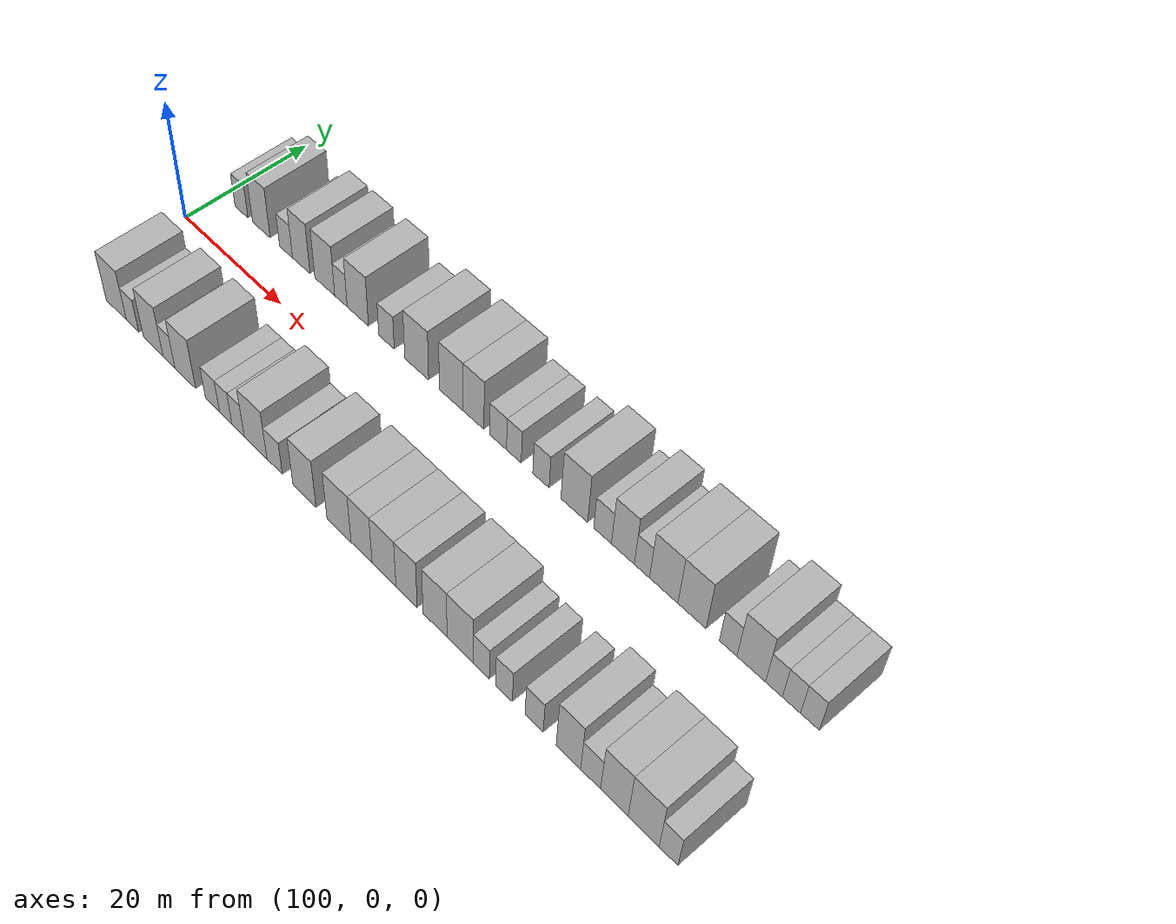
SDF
<sdf version="1.6">
 <world name="default">
  <model name="building_26">
   <static>1</static>
   <pose>104.0441 11.0000 0 0.000000 0.000000 1.570796</pose>
   <link name="link">
    <pose>0 0 3.00 0 0 0</pose>
    <collision name="collision"><geometry><box><size>10.0000 2.7664 6.0000</size></box></geometry></collision>
    <visual name="visual">
     <cast_shadows>0</cast_shadows>
     <geometry><box><size>10.0000 2.7664 6.0000</size></box></geometry>
     <material>
      <script>
       <uri>model://HANNAS_wall/materials/scripts</uri>
       <uri>model://HANNAS_wall/materials/textures</uri>
       <name>vrc/HANNAS_wall</name>
      </script>
     </material>
    </visual>
   </link>
  </model>
  <model name="building_27">
   <static>1</static>
   <pose>108.2860 11.0000 0 0.000000 0.000000 1.570796</pose>
   <link name="link">
    <pose>0 0 4.50 0 0 0</pose>
    <collision name="collision"><geometry><box><size>10.0000 3.7175 9.0000</size></box></geometry></collision>
    <visual name="visual">
     <cast_shadows>0</cast_shadows>
     <geometry><box><size>10.0000 3.7175 9.0000</size></box></geometry>
     <material>
      <script>
       <uri>model://HANNAS_wall/materials/scripts</uri>
       <uri>model://HANNAS_wall/materials/textures</uri>
       <name>vrc/HANNAS_wall</name>
      </script>
     </material>
    </visual>
   </link>
  </model>
  <model name="building_28">
   <static>1</static>
   <pose>113.4828 11.0000 0 0.000000 0.000000 1.570796</pose>
   <link name="link">
    <pose>0 0 3.00 0 0 0</pose>
    <collision name="collision"><geometry><box><size>10.0000 2.6761 6.0000</size></box></geometry></collision>
    <visual name="visual">
     <cast_shadows>0</cast_shadows>
     <geometry><box><size>10.0000 2.6761 6.0000</size></box></geometry>
     <material>
      <script>
       <uri>model://HANNAS_wall/materials/scripts</uri>
       <uri>model://HANNAS_wall/materials/textures</uri>
       <name>vrc/HANNAS_wall</name>
      </script>
     </material>
    </visual>
   </link>
  </model>
  <model name="building_29">
   <static>1</static>
   <pose>116.6218 11.0000 0 0.000000 0.000000 1.570796</pose>
   <link name="link">
    <pose>0 0 4.50 0 0 0</pose>
    <collision name="collision"><geometry><box><size>10.0000 3.6017 9.0000</size></box></geometry></collision>
    <visual name="visual">
     <cast_shadows>0</cast_shadows>
     <geometry><box><size>10.0000 3.6017 9.0000</size></box></geometry>
     <material>
      <script>
       <uri>model://HANNAS_wall/materials/scripts</uri>
       <uri>model://HANNAS_wall/materials/textures</uri>
       <name>vrc/HANNAS_wall</name>
      </script>
     </material>
    </visual>
   </link>
  </model>
  <model name="building_30">
   <static>1</static>
   <pose>121.4236 11.0000 0 0.000000 0.000000 1.570796</pose>
   <link name="link">
    <pose>0 0 4.50 0 0 0</pose>
    <collision name="collision"><geometry><box><size>10.0000 4.0019 9.0000</size></box></geometry></collision>
    <visual name="visual">
     <cast_shadows>0</cast_shadows>
     <geometry><box><size>10.0000 4.0019 9.0000</size></box></geometry>
     <material>
      <script>
       <uri>model://HANNAS_wall/materials/scripts</uri>
       <uri>model://HANNAS_wall/materials/textures</uri>
       <name>vrc/HANNAS_wall</name>
      </script>
     </material>
    </visual>
   </link>
  </model>
  <model name="building_31">
   <static>1</static>
   <pose>124.6648 11.0000 0 0.000000 0.000000 1.570796</pose>
   <link name="link">
    <pose>0 0 3.00 0 0 0</pose>
    <collision name="collision"><geometry><box><size>10.0000 2.4805 6.0000</size></box></geometry></collision>
    <visual name="visual">
     <cast_shadows>0</cast_shadows>
     <geometry><box><size>10.0000 2.4805 6.0000</size></box></geometry>
     <material>
      <script>
       <uri>model://HANNAS_wall/materials/scripts</uri>
       <uri>model://HANNAS_wall/materials/textures</uri>
       <name>vrc/HANNAS_wall</name>
      </script>
     </material>
    </visual>
   </link>
  </model>
  <model name="building_32">
   <static>1</static>
   <pose>127.9962 11.0000 0 0.000000 0.000000 1.570796</pose>
   <link name="link">
    <pose>0 0 4.50 0 0 0</pose>
    <collision name="collision"><geometry><box><size>10.0000 4.1823 9.0000</size></box></geometry></collision>
    <visual name="visual">
     <cast_shadows>0</cast_shadows>
     <geometry><box><size>10.0000 4.1823 9.0000</size></box></geometry>
     <material>
      <script>
       <uri>model://HANNAS_wall/materials/scripts</uri>
       <uri>model://HANNAS_wall/materials/textures</uri>
       <name>vrc/HANNAS_wall</name>
      </script>
     </material>
    </visual>
   </link>
  </model>
  <model name="building_33">
   <static>1</static>
   <pose>133.5678 11.0000 0 0.000000 0.000000 1.570796</pose>
   <link name="link">
    <pose>0 0 3.00 0 0 0</pose>
    <collision name="collision"><geometry><box><size>10.0000 2.9610 6.0000</size></box></geometry></collision>
    <visual name="visual">
     <cast_shadows>0</cast_shadows>
     <geometry><box><size>10.0000 2.9610 6.0000</size></box></geometry>
     <material>
      <script>
       <uri>model://HANNAS_wall/materials/scripts</uri>
       <uri>model://HANNAS_wall/materials/textures</uri>
       <name>vrc/HANNAS_wall</name>
      </script>
     </material>
    </visual>
   </link>
  </model>
  <model name="building_34">
   <static>1</static>
   <pose>139.2877 11.0000 0 0.000000 0.000000 1.570796</pose>
   <link name="link">
    <pose>0 0 4.50 0 0 0</pose>
    <collision name="collision"><geometry><box><size>10.0000 4.4787 9.0000</size></box></geometry></collision>
    <visual name="visual">
     <cast_shadows>0</cast_shadows>
     <geometry><box><size>10.0000 4.4787 9.0000</size></box></geometry>
     <material>
      <script>
       <uri>model://HANNAS_wall/materials/scripts</uri>
       <uri>model://HANNAS_wall/materials/textures</uri>
       <name>vrc/HANNAS_wall</name>
      </script>
     </material>
    </visual>
   </link>
  </model>
  <model name="building_35">
   <static>1</static>
   <pose>145.7002 11.0000 0 0.000000 0.000000 1.570796</pose>
   <link name="link">
    <pose>0 0 4.50 0 0 0</pose>
    <collision name="collision"><geometry><box><size>10.0000 4.3463 9.0000</size></box></geometry></collision>
    <visual name="visual">
     <cast_shadows>0</cast_shadows>
     <geometry><box><size>10.0000 4.3463 9.0000</size></box></geometry>
     <material>
      <script>
       <uri>model://HANNAS_wall/materials/scripts</uri>
       <uri>model://HANNAS_wall/materials/textures</uri>
       <name>vrc/HANNAS_wall</name>
      </script>
     </material>
    </visual>
   </link>
  </model>
  <model name="building_36">
   <static>1</static>
   <pose>149.7222 11.0000 0 0.000000 0.000000 1.570796</pose>
   <link name="link">
    <pose>0 0 4.50 0 0 0</pose>
    <collision name="collision"><geometry><box><size>10.0000 3.6979 9.0000</size></box></geometry></collision>
    <visual name="visual">
     <cast_shadows>0</cast_shadows>
     <geometry><box><size>10.0000 3.6979 9.0000</size></box></geometry>
     <material>
      <script>
       <uri>model://HANNAS_wall/materials/scripts</uri>
       <uri>model://HANNAS_wall/materials/textures</uri>
       <name>vrc/HANNAS_wall</name>
      </script>
     </material>
    </visual>
   </link>
  </model>
  <model name="building_37">
   <static>1</static>
   <pose>154.0695 11.0000 0 0.000000 0.000000 1.570796</pose>
   <link name="link">
    <pose>0 0 3.00 0 0 0</pose>
    <collision name="collision"><geometry><box><size>10.0000 2.9967 6.0000</size></box></geometry></collision>
    <visual name="visual">
     <cast_shadows>0</cast_shadows>
     <geometry><box><size>10.0000 2.9967 6.0000</size></box></geometry>
     <material>
      <script>
       <uri>model://HANNAS_wall/materials/scripts</uri>
       <uri>model://HANNAS_wall/materials/textures</uri>
       <name>vrc/HANNAS_wall</name>
      </script>
     </material>
    </visual>
   </link>
  </model>
  <model name="building_38">
   <static>1</static>
   <pose>156.8507 11.0000 0 0.000000 0.000000 1.570796</pose>
   <link name="link">
    <pose>0 0 3.00 0 0 0</pose>
    <collision name="collision"><geometry><box><size>10.0000 2.5656 6.0000</size></box></geometry></collision>
    <visual name="visual">
     <cast_shadows>0</cast_shadows>
     <geometry><box><size>10.0000 2.5656 6.0000</size></box></geometry>
     <material>
      <script>
       <uri>model://HANNAS_wall/materials/scripts</uri>
       <uri>model://HANNAS_wall/materials/textures</uri>
       <name>vrc/HANNAS_wall</name>
      </script>
     </material>
    </visual>
   </link>
  </model>
  <model name="building_39">
   <static>1</static>
   <pose>161.5285 11.0000 0 0.000000 0.000000 1.570796</pose>
   <link name="link">
    <pose>0 0 3.00 0 0 0</pose>
    <collision name="collision"><geometry><box><size>10.0000 2.7900 6.0000</size></box></geometry></collision>
    <visual name="visual">
     <cast_shadows>0</cast_shadows>
     <geometry><box><size>10.0000 2.7900 6.0000</size></box></geometry>
     <material>
      <script>
       <uri>model://HANNAS_wall/materials/scripts</uri>
       <uri>model://HANNAS_wall/materials/textures</uri>
       <name>vrc/HANNAS_wall</name>
      </script>
     </material>
    </visual>
   </link>
  </model>
  <model name="building_40">
   <static>1</static>
   <pose>167.1482 11.0000 0 0.000000 0.000000 1.570796</pose>
   <link name="link">
    <pose>0 0 4.50 0 0 0</pose>
    <collision name="collision"><geometry><box><size>10.0000 4.4494 9.0000</size></box></geometry></collision>
    <visual name="visual">
     <cast_shadows>0</cast_shadows>
     <geometry><box><size>10.0000 4.4494 9.0000</size></box></geometry>
     <material>
      <script>
       <uri>model://HANNAS_wall/materials/scripts</uri>
       <uri>model://HANNAS_wall/materials/textures</uri>
       <name>vrc/HANNAS_wall</name>
      </script>
     </material>
    </visual>
   </link>
  </model>
  <model name="building_41">
   <static>1</static>
   <pose>171.8183 11.0000 0 0.000000 0.000000 1.570796</pose>
   <link name="link">
    <pose>0 0 3.00 0 0 0</pose>
    <collision name="collision"><geometry><box><size>10.0000 2.8908 6.0000</size></box></geometry></collision>
    <visual name="visual">
     <cast_shadows>0</cast_shadows>
     <geometry><box><size>10.0000 2.8908 6.0000</size></box></geometry>
     <material>
      <script>
       <uri>model://HANNAS_wall/materials/scripts</uri>
       <uri>model://HANNAS_wall/materials/textures</uri>
       <name>vrc/HANNAS_wall</name>
      </script>
     </material>
    </visual>
   </link>
  </model>
  <model name="building_42">
   <static>1</static>
   <pose>175.1064 11.0000 0 0.000000 0.000000 1.570796</pose>
   <link name="link">
    <pose>0 0 4.50 0 0 0</pose>
    <collision name="collision"><geometry><box><size>10.0000 3.6856 9.0000</size></box></geometry></collision>
    <visual name="visual">
     <cast_shadows>0</cast_shadows>
     <geometry><box><size>10.0000 3.6856 9.0000</size></box></geometry>
     <material>
      <script>
       <uri>model://HANNAS_wall/materials/scripts</uri>
       <uri>model://HANNAS_wall/materials/textures</uri>
       <name>vrc/HANNAS_wall</name>
      </script>
     </material>
    </visual>
   </link>
  </model>
  <model name="building_43">
   <static>1</static>
   <pose>178.1605 11.0000 0 0.000000 0.000000 1.570796</pose>
   <link name="link">
    <pose>0 0 3.00 0 0 0</pose>
    <collision name="collision"><geometry><box><size>10.0000 2.4226 6.0000</size></box></geometry></collision>
    <visual name="visual">
     <cast_shadows>0</cast_shadows>
     <geometry><box><size>10.0000 2.4226 6.0000</size></box></geometry>
     <material>
      <script>
       <uri>model://HANNAS_wall/materials/scripts</uri>
       <uri>model://HANNAS_wall/materials/textures</uri>
       <name>vrc/HANNAS_wall</name>
      </script>
     </material>
    </visual>
   </link>
  </model>
  <model name="building_44">
   <static>1</static>
   <pose>181.5900 11.0000 0 0.000000 0.000000 1.570796</pose>
   <link name="link">
    <pose>0 0 4.50 0 0 0</pose>
    <collision name="collision"><geometry><box><size>10.0000 4.4364 9.0000</size></box></geometry></collision>
    <visual name="visual">
     <cast_shadows>0</cast_shadows>
     <geometry><box><size>10.0000 4.4364 9.0000</size></box></geometry>
     <material>
      <script>
       <uri>model://HANNAS_wall/materials/scripts</uri>
       <uri>model://HANNAS_wall/materials/textures</uri>
       <name>vrc/HANNAS_wall</name>
      </script>
     </material>
    </visual>
   </link>
  </model>
  <model name="building_45">
   <static>1</static>
   <pose>185.9693 11.0000 0 0.000000 0.000000 1.570796</pose>
   <link name="link">
    <pose>0 0 4.50 0 0 0</pose>
    <collision name="collision"><geometry><box><size>10.0000 4.3222 9.0000</size></box></geometry></collision>
    <visual name="visual">
     <cast_shadows>0</cast_shadows>
     <geometry><box><size>10.0000 4.3222 9.0000</size></box></geometry>
     <material>
      <script>
       <uri>model://HANNAS_wall/materials/scripts</uri>
       <uri>model://HANNAS_wall/materials/textures</uri>
       <name>vrc/HANNAS_wall</name>
      </script>
     </material>
    </visual>
   </link>
  </model>
  <model name="building_46">
   <static>1</static>
   <pose>191.4450 11.0000 0 0.000000 0.000000 1.570796</pose>
   <link name="link">
    <pose>0 0 3.00 0 0 0</pose>
    <collision name="collision"><geometry><box><size>10.0000 2.6292 6.0000</size></box></geometry></collision>
    <visual name="visual">
     <cast_shadows>0</cast_shadows>
     <geometry><box><size>10.0000 2.6292 6.0000</size></box></geometry>
     <material>
      <script>
       <uri>model://HANNAS_wall/materials/scripts</uri>
       <uri>model://HANNAS_wall/materials/textures</uri>
       <name>vrc/HANNAS_wall</name>
      </script>
     </material>
    </visual>
   </link>
  </model>
  <model name="building_47">
   <static>1</static>
   <pose>194.8585 11.0000 0 0.000000 0.000000 1.570796</pose>
   <link name="link">
    <pose>0 0 4.50 0 0 0</pose>
    <collision name="collision"><geometry><box><size>10.0000 4.1977 9.0000</size></box></geometry></collision>
    <visual name="visual">
     <cast_shadows>0</cast_shadows>
     <geometry><box><size>10.0000 4.1977 9.0000</size></box></geometry>
     <material>
      <script>
       <uri>model://HANNAS_wall/materials/scripts</uri>
       <uri>model://HANNAS_wall/materials/textures</uri>
       <name>vrc/HANNAS_wall</name>
      </script>
     </material>
    </visual>
   </link>
  </model>
  <model name="building_48">
   <static>1</static>
   <pose>198.1755 11.0000 0 0.000000 0.000000 1.570796</pose>
   <link name="link">
    <pose>0 0 3.00 0 0 0</pose>
    <collision name="collision"><geometry><box><size>10.0000 2.4363 6.0000</size></box></geometry></collision>
    <visual name="visual">
     <cast_shadows>0</cast_shadows>
     <geometry><box><size>10.0000 2.4363 6.0000</size></box></geometry>
     <material>
      <script>
       <uri>model://HANNAS_wall/materials/scripts</uri>
       <uri>model://HANNAS_wall/materials/textures</uri>
       <name>vrc/HANNAS_wall</name>
      </script>
     </material>
    </visual>
   </link>
  </model>
  <model name="building_49">
   <static>1</static>
   <pose>200.6942 11.0000 0 0.000000 0.000000 1.570796</pose>
   <link name="link">
    <pose>0 0 3.00 0 0 0</pose>
    <collision name="collision"><geometry><box><size>10.0000 2.6012 6.0000</size></box></geometry></collision>
    <visual name="visual">
     <cast_shadows>0</cast_shadows>
     <geometry><box><size>10.0000 2.6012 6.0000</size></box></geometry>
     <material>
      <script>
       <uri>model://HANNAS_wall/materials/scripts</uri>
       <uri>model://HANNAS_wall/materials/textures</uri>
       <name>vrc/HANNAS_wall</name>
      </script>
     </material>
    </visual>
   </link>
  </model>
  <model name="building_50">
   <static>1</static>
   <pose>203.3275 11.0000 0 0.000000 0.000000 1.570796</pose>
   <link name="link">
    <pose>0 0 3.00 0 0 0</pose>
    <collision name="collision"><geometry><box><size>10.0000 2.6655 6.0000</size></box></geometry></collision>
    <visual name="visual">
     <cast_shadows>0</cast_shadows>
     <geometry><box><size>10.0000 2.6655 6.0000</size></box></geometry>
     <material>
      <script>
       <uri>model://HANNAS_wall/materials/scripts</uri>
       <uri>model://HANNAS_wall/materials/textures</uri>
       <name>vrc/HANNAS_wall</name>
      </script>
     </material>
    </visual>
   </link>
  </model>
  <model name="building_76">
   <static>1</static>
   <pose>107.1784 -11.0000 0 0.000000 0.000000 1.570796</pose>
   <link name="link">
    <pose>0 0 4.50 0 0 0</pose>
    <collision name="collision"><geometry><box><size>10.0000 4.3725 9.0000</size></box></geometry></collision>
    <visual name="visual">
     <cast_shadows>0</cast_shadows>
     <geometry><box><size>10.0000 4.3725 9.0000</size></box></geometry>
     <material>
      <script>
       <uri>model://HANNAS_wall/materials/scripts</uri>
       <uri>model://HANNAS_wall/materials/textures</uri>
       <name>vrc/HANNAS_wall</name>
      </script>
     </material>
    </visual>
   </link>
  </model>
  <model name="building_77">
   <static>1</static>
   <pose>110.6973 -11.0000 0 0.000000 0.000000 1.570796</pose>
   <link name="link">
    <pose>0 0 3.00 0 0 0</pose>
    <collision name="collision"><geometry><box><size>10.0000 2.6654 6.0000</size></box></geometry></collision>
    <visual name="visual">
     <cast_shadows>0</cast_shadows>
     <geometry><box><size>10.0000 2.6654 6.0000</size></box></geometry>
     <material>
      <script>
       <uri>model://HANNAS_wall/materials/scripts</uri>
       <uri>model://HANNAS_wall/materials/textures</uri>
       <name>vrc/HANNAS_wall</name>
      </script>
     </material>
    </visual>
   </link>
  </model>
  <model name="building_78">
   <static>1</static>
   <pose>115.0964 -11.0000 0 0.000000 0.000000 1.570796</pose>
   <link name="link">
    <pose>0 0 4.50 0 0 0</pose>
    <collision name="collision"><geometry><box><size>10.0000 4.1327 9.0000</size></box></geometry></collision>
    <visual name="visual">
     <cast_shadows>0</cast_shadows>
     <geometry><box><size>10.0000 4.1327 9.0000</size></box></geometry>
     <material>
      <script>
       <uri>model://HANNAS_wall/materials/scripts</uri>
       <uri>model://HANNAS_wall/materials/textures</uri>
       <name>vrc/HANNAS_wall</name>
      </script>
     </material>
    </visual>
   </link>
  </model>
  <model name="building_79">
   <static>1</static>
   <pose>118.3958 -11.0000 0 0.000000 0.000000 1.570796</pose>
   <link name="link">
    <pose>0 0 3.00 0 0 0</pose>
    <collision name="collision"><geometry><box><size>10.0000 2.4661 6.0000</size></box></geometry></collision>
    <visual name="visual">
     <cast_shadows>0</cast_shadows>
     <geometry><box><size>10.0000 2.4661 6.0000</size></box></geometry>
     <material>
      <script>
       <uri>model://HANNAS_wall/materials/scripts</uri>
       <uri>model://HANNAS_wall/materials/textures</uri>
       <name>vrc/HANNAS_wall</name>
      </script>
     </material>
    </visual>
   </link>
  </model>
  <model name="building_80">
   <static>1</static>
   <pose>121.7547 -11.0000 0 0.000000 0.000000 1.570796</pose>
   <link name="link">
    <pose>0 0 4.50 0 0 0</pose>
    <collision name="collision"><geometry><box><size>10.0000 4.2517 9.0000</size></box></geometry></collision>
    <visual name="visual">
     <cast_shadows>0</cast_shadows>
     <geometry><box><size>10.0000 4.2517 9.0000</size></box></geometry>
     <material>
      <script>
       <uri>model://HANNAS_wall/materials/scripts</uri>
       <uri>model://HANNAS_wall/materials/textures</uri>
       <name>vrc/HANNAS_wall</name>
      </script>
     </material>
    </visual>
   </link>
  </model>
  <model name="building_81">
   <static>1</static>
   <pose>127.2900 -11.0000 0 0.000000 0.000000 1.570796</pose>
   <link name="link">
    <pose>0 0 3.00 0 0 0</pose>
    <collision name="collision"><geometry><box><size>10.0000 2.8190 6.0000</size></box></geometry></collision>
    <visual name="visual">
     <cast_shadows>0</cast_shadows>
     <geometry><box><size>10.0000 2.8190 6.0000</size></box></geometry>
     <material>
      <script>
       <uri>model://HANNAS_wall/materials/scripts</uri>
       <uri>model://HANNAS_wall/materials/textures</uri>
       <name>vrc/HANNAS_wall</name>
      </script>
     </material>
    </visual>
   </link>
  </model>
  <model name="building_82">
   <static>1</static>
   <pose>129.9274 -11.0000 0 0.000000 0.000000 1.570796</pose>
   <link name="link">
    <pose>0 0 3.00 0 0 0</pose>
    <collision name="collision"><geometry><box><size>10.0000 2.4559 6.0000</size></box></geometry></collision>
    <visual name="visual">
     <cast_shadows>0</cast_shadows>
     <geometry><box><size>10.0000 2.4559 6.0000</size></box></geometry>
     <material>
      <script>
       <uri>model://HANNAS_wall/materials/scripts</uri>
       <uri>model://HANNAS_wall/materials/textures</uri>
       <name>vrc/HANNAS_wall</name>
      </script>
     </material>
    </visual>
   </link>
  </model>
  <model name="building_83">
   <static>1</static>
   <pose>132.3663 -11.0000 0 0.000000 0.000000 1.570796</pose>
   <link name="link">
    <pose>0 0 3.00 0 0 0</pose>
    <collision name="collision"><geometry><box><size>10.0000 2.4218 6.0000</size></box></geometry></collision>
    <visual name="visual">
     <cast_shadows>0</cast_shadows>
     <geometry><box><size>10.0000 2.4218 6.0000</size></box></geometry>
     <material>
      <script>
       <uri>model://HANNAS_wall/materials/scripts</uri>
       <uri>model://HANNAS_wall/materials/textures</uri>
       <name>vrc/HANNAS_wall</name>
      </script>
     </material>
    </visual>
   </link>
  </model>
  <model name="building_84">
   <static>1</static>
   <pose>135.7771 -11.0000 0 0.000000 0.000000 1.570796</pose>
   <link name="link">
    <pose>0 0 4.50 0 0 0</pose>
    <collision name="collision"><geometry><box><size>10.0000 4.3999 9.0000</size></box></geometry></collision>
    <visual name="visual">
     <cast_shadows>0</cast_shadows>
     <geometry><box><size>10.0000 4.3999 9.0000</size></box></geometry>
     <material>
      <script>
       <uri>model://HANNAS_wall/materials/scripts</uri>
       <uri>model://HANNAS_wall/materials/textures</uri>
       <name>vrc/HANNAS_wall</name>
      </script>
     </material>
    </visual>
   </link>
  </model>
  <model name="building_85">
   <static>1</static>
   <pose>139.4356 -11.0000 0 0.000000 0.000000 1.570796</pose>
   <link name="link">
    <pose>0 0 3.00 0 0 0</pose>
    <collision name="collision"><geometry><box><size>10.0000 2.9171 6.0000</size></box></geometry></collision>
    <visual name="visual">
     <cast_shadows>0</cast_shadows>
     <geometry><box><size>10.0000 2.9171 6.0000</size></box></geometry>
     <material>
      <script>
       <uri>model://HANNAS_wall/materials/scripts</uri>
       <uri>model://HANNAS_wall/materials/textures</uri>
       <name>vrc/HANNAS_wall</name>
      </script>
     </material>
    </visual>
   </link>
  </model>
  <model name="building_86">
   <static>1</static>
   <pose>145.0407 -11.0000 0 0.000000 0.000000 1.570796</pose>
   <link name="link">
    <pose>0 0 4.50 0 0 0</pose>
    <collision name="collision"><geometry><box><size>10.0000 4.2930 9.0000</size></box></geometry></collision>
    <visual name="visual">
     <cast_shadows>0</cast_shadows>
     <geometry><box><size>10.0000 4.2930 9.0000</size></box></geometry>
     <material>
      <script>
       <uri>model://HANNAS_wall/materials/scripts</uri>
       <uri>model://HANNAS_wall/materials/textures</uri>
       <name>vrc/HANNAS_wall</name>
      </script>
     </material>
    </visual>
   </link>
  </model>
  <model name="building_87">
   <static>1</static>
   <pose>151.3651 -11.0000 0 0.000000 0.000000 1.570796</pose>
   <link name="link">
    <pose>0 0 4.50 0 0 0</pose>
    <collision name="collision"><geometry><box><size>10.0000 4.3558 9.0000</size></box></geometry></collision>
    <visual name="visual">
     <cast_shadows>0</cast_shadows>
     <geometry><box><size>10.0000 4.3558 9.0000</size></box></geometry>
     <material>
      <script>
       <uri>model://HANNAS_wall/materials/scripts</uri>
       <uri>model://HANNAS_wall/materials/textures</uri>
       <name>vrc/HANNAS_wall</name>
      </script>
     </material>
    </visual>
   </link>
  </model>
  <model name="building_88">
   <static>1</static>
   <pose>155.4128 -11.0000 0 0.000000 0.000000 1.570796</pose>
   <link name="link">
    <pose>0 0 4.50 0 0 0</pose>
    <collision name="collision"><geometry><box><size>10.0000 3.7395 9.0000</size></box></geometry></collision>
    <visual name="visual">
     <cast_shadows>0</cast_shadows>
     <geometry><box><size>10.0000 3.7395 9.0000</size></box></geometry>
     <material>
      <script>
       <uri>model://HANNAS_wall/materials/scripts</uri>
       <uri>model://HANNAS_wall/materials/textures</uri>
       <name>vrc/HANNAS_wall</name>
      </script>
     </material>
    </visual>
   </link>
  </model>
  <model name="building_89">
   <static>1</static>
   <pose>159.3691 -11.0000 0 0.000000 0.000000 1.570796</pose>
   <link name="link">
    <pose>0 0 4.50 0 0 0</pose>
    <collision name="collision"><geometry><box><size>10.0000 4.1733 9.0000</size></box></geometry></collision>
    <visual name="visual">
     <cast_shadows>0</cast_shadows>
     <geometry><box><size>10.0000 4.1733 9.0000</size></box></geometry>
     <material>
      <script>
       <uri>model://HANNAS_wall/materials/scripts</uri>
       <uri>model://HANNAS_wall/materials/textures</uri>
       <name>vrc/HANNAS_wall</name>
      </script>
     </material>
    </visual>
   </link>
  </model>
  <model name="building_90">
   <static>1</static>
   <pose>163.2693 -11.0000 0 0.000000 0.000000 1.570796</pose>
   <link name="link">
    <pose>0 0 4.50 0 0 0</pose>
    <collision name="collision"><geometry><box><size>10.0000 3.6270 9.0000</size></box></geometry></collision>
    <visual name="visual">
     <cast_shadows>0</cast_shadows>
     <geometry><box><size>10.0000 3.6270 9.0000</size></box></geometry>
     <material>
      <script>
       <uri>model://HANNAS_wall/materials/scripts</uri>
       <uri>model://HANNAS_wall/materials/textures</uri>
       <name>vrc/HANNAS_wall</name>
      </script>
     </material>
    </visual>
   </link>
  </model>
  <model name="building_91">
   <static>1</static>
   <pose>168.0905 -11.0000 0 0.000000 0.000000 1.570796</pose>
   <link name="link">
    <pose>0 0 4.50 0 0 0</pose>
    <collision name="collision"><geometry><box><size>10.0000 4.0156 9.0000</size></box></geometry></collision>
    <visual name="visual">
     <cast_shadows>0</cast_shadows>
     <geometry><box><size>10.0000 4.0156 9.0000</size></box></geometry>
     <material>
      <script>
       <uri>model://HANNAS_wall/materials/scripts</uri>
       <uri>model://HANNAS_wall/materials/textures</uri>
       <name>vrc/HANNAS_wall</name>
      </script>
     </material>
    </visual>
   </link>
  </model>
  <model name="building_92">
   <static>1</static>
   <pose>172.2556 -11.0000 0 0.000000 0.000000 1.570796</pose>
   <link name="link">
    <pose>0 0 4.50 0 0 0</pose>
    <collision name="collision"><geometry><box><size>10.0000 4.3146 9.0000</size></box></geometry></collision>
    <visual name="visual">
     <cast_shadows>0</cast_shadows>
     <geometry><box><size>10.0000 4.3146 9.0000</size></box></geometry>
     <material>
      <script>
       <uri>model://HANNAS_wall/materials/scripts</uri>
       <uri>model://HANNAS_wall/materials/textures</uri>
       <name>vrc/HANNAS_wall</name>
      </script>
     </material>
    </visual>
   </link>
  </model>
  <model name="building_93">
   <static>1</static>
   <pose>175.7111 -11.0000 0 0.000000 0.000000 1.570796</pose>
   <link name="link">
    <pose>0 0 3.00 0 0 0</pose>
    <collision name="collision"><geometry><box><size>10.0000 2.5963 6.0000</size></box></geometry></collision>
    <visual name="visual">
     <cast_shadows>0</cast_shadows>
     <geometry><box><size>10.0000 2.5963 6.0000</size></box></geometry>
     <material>
      <script>
       <uri>model://HANNAS_wall/materials/scripts</uri>
       <uri>model://HANNAS_wall/materials/textures</uri>
       <name>vrc/HANNAS_wall</name>
      </script>
     </material>
    </visual>
   </link>
  </model>
  <model name="building_94">
   <static>1</static>
   <pose>179.3433 -11.0000 0 0.000000 0.000000 1.570796</pose>
   <link name="link">
    <pose>0 0 3.00 0 0 0</pose>
    <collision name="collision"><geometry><box><size>10.0000 2.6681 6.0000</size></box></geometry></collision>
    <visual name="visual">
     <cast_shadows>0</cast_shadows>
     <geometry><box><size>10.0000 2.6681 6.0000</size></box></geometry>
     <material>
      <script>
       <uri>model://HANNAS_wall/materials/scripts</uri>
       <uri>model://HANNAS_wall/materials/textures</uri>
       <name>vrc/HANNAS_wall</name>
      </script>
     </material>
    </visual>
   </link>
  </model>
  <model name="building_95">
   <static>1</static>
   <pose>184.0925 -11.0000 0 0.000000 0.000000 1.570796</pose>
   <link name="link">
    <pose>0 0 3.00 0 0 0</pose>
    <collision name="collision"><geometry><box><size>10.0000 2.8303 6.0000</size></box></geometry></collision>
    <visual name="visual">
     <cast_shadows>0</cast_shadows>
     <geometry><box><size>10.0000 2.8303 6.0000</size></box></geometry>
     <material>
      <script>
       <uri>model://HANNAS_wall/materials/scripts</uri>
       <uri>model://HANNAS_wall/materials/textures</uri>
       <name>vrc/HANNAS_wall</name>
      </script>
     </material>
    </visual>
   </link>
  </model>
  <model name="building_96">
   <static>1</static>
   <pose>189.3586 -11.0000 0 0.000000 0.000000 1.570796</pose>
   <link name="link">
    <pose>0 0 4.50 0 0 0</pose>
    <collision name="collision"><geometry><box><size>10.0000 3.7020 9.0000</size></box></geometry></collision>
    <visual name="visual">
     <cast_shadows>0</cast_shadows>
     <geometry><box><size>10.0000 3.7020 9.0000</size></box></geometry>
     <material>
      <script>
       <uri>model://HANNAS_wall/materials/scripts</uri>
       <uri>model://HANNAS_wall/materials/textures</uri>
       <name>vrc/HANNAS_wall</name>
      </script>
     </material>
    </visual>
   </link>
  </model>
  <model name="building_97">
   <static>1</static>
   <pose>192.7062 -11.0000 0 0.000000 0.000000 1.570796</pose>
   <link name="link">
    <pose>0 0 3.00 0 0 0</pose>
    <collision name="collision"><geometry><box><size>10.0000 2.9934 6.0000</size></box></geometry></collision>
    <visual name="visual">
     <cast_shadows>0</cast_shadows>
     <geometry><box><size>10.0000 2.9934 6.0000</size></box></geometry>
     <material>
      <script>
       <uri>model://HANNAS_wall/materials/scripts</uri>
       <uri>model://HANNAS_wall/materials/textures</uri>
       <name>vrc/HANNAS_wall</name>
      </script>
     </material>
    </visual>
   </link>
  </model>
  <model name="building_98">
   <static>1</static>
   <pose>196.2232 -11.0000 0 0.000000 0.000000 1.570796</pose>
   <link name="link">
    <pose>0 0 4.50 0 0 0</pose>
    <collision name="collision"><geometry><box><size>10.0000 4.0406 9.0000</size></box></geometry></collision>
    <visual name="visual">
     <cast_shadows>0</cast_shadows>
     <geometry><box><size>10.0000 4.0406 9.0000</size></box></geometry>
     <material>
      <script>
       <uri>model://HANNAS_wall/materials/scripts</uri>
       <uri>model://HANNAS_wall/materials/textures</uri>
       <name>vrc/HANNAS_wall</name>
      </script>
     </material>
    </visual>
   </link>
  </model>
  <model name="building_99">
   <static>1</static>
   <pose>200.4679 -11.0000 0 0.000000 0.000000 1.570796</pose>
   <link name="link">
    <pose>0 0 4.50 0 0 0</pose>
    <collision name="collision"><geometry><box><size>10.0000 4.4488 9.0000</size></box></geometry></collision>
    <visual name="visual">
     <cast_shadows>0</cast_shadows>
     <geometry><box><size>10.0000 4.4488 9.0000</size></box></geometry>
     <material>
      <script>
       <uri>model://HANNAS_wall/materials/scripts</uri>
       <uri>model://HANNAS_wall/materials/textures</uri>
       <name>vrc/HANNAS_wall</name>
      </script>
     </material>
    </visual>
   </link>
  </model>
  <model name="building_100">
   <static>1</static>
   <pose>204.0275 -11.0000 0 0.000000 0.000000 1.570796</pose>
   <link name="link">
    <pose>0 0 3.00 0 0 0</pose>
    <collision name="collision"><geometry><box><size>10.0000 2.6704 6.0000</size></box></geometry></collision>
    <visual name="visual">
     <cast_shadows>0</cast_shadows>
     <geometry><box><size>10.0000 2.6704 6.0000</size></box></geometry>
     <material>
      <script>
       <uri>model://HANNAS_wall/materials/scripts</uri>
       <uri>model://HANNAS_wall/materials/textures</uri>
       <name>vrc/HANNAS_wall</name>
      </script>
     </material>
    </visual>
   </link>
  </model>
 </world>
</sdf>
